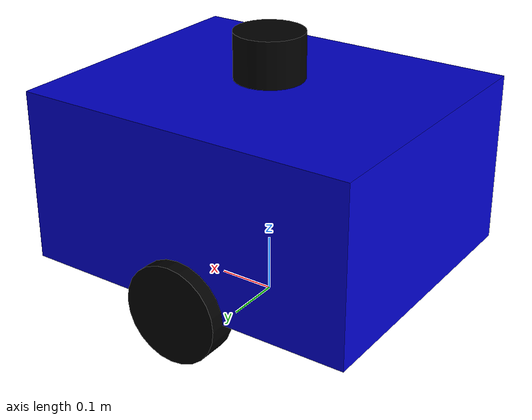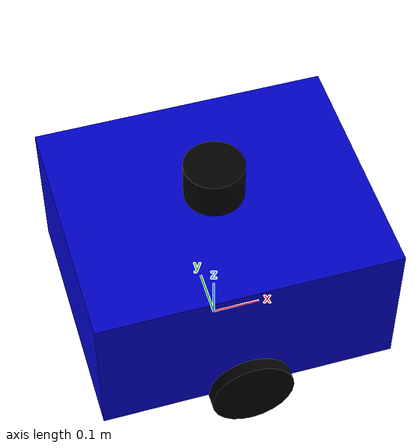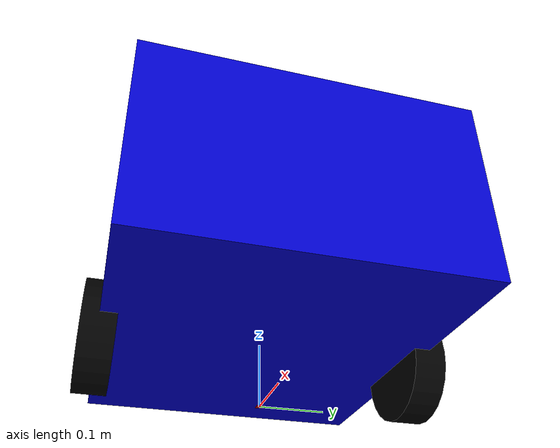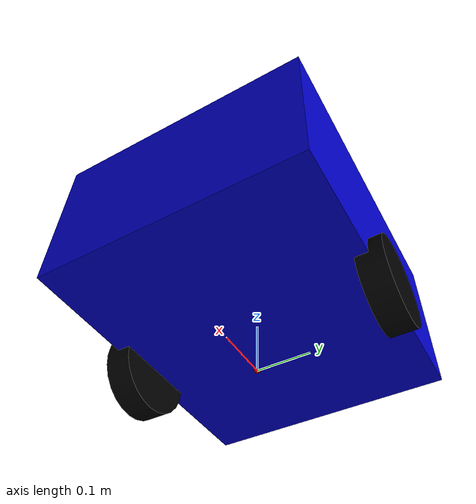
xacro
<?xml version="1.0"?>
<robot xmlns:xacro="http://www.ros.org/wiki/xacro" name="ultrabot">

  <!-- PARAMETERS (from robot_config.yaml) -->
  <xacro:property name="wheel_separation" value="0.5" />   <!-- distance_wheels -->
  <xacro:property name="wheel_diameter" value="0.17" />     <!-- wheel_diameter -->
  <xacro:property name="wheel_radius" value="${wheel_diameter / 2.0}" />
  <xacro:property name="wheel_width" value="0.05" />

  <xacro:property name="base_length" value="0.6" />
  <xacro:property name="base_width" value="0.5" />
  <xacro:property name="base_height" value="0.3" />

  <!-- Sensor mounting positions -->
  <xacro:property name="lidar_front_x" value="0.25" />      <!-- Front 2D LiDAR -->
  <xacro:property name="lidar_front_z" value="0.20" />
  <xacro:property name="lidar_rear_x" value="-0.25" />      <!-- Rear 2D LiDAR -->
  <xacro:property name="lidar_rear_z" value="0.20" />
  <xacro:property name="lidar_3d_x" value="0.0" />          <!-- 3D LiDAR (Ouster) top center -->
  <xacro:property name="lidar_3d_z" value="0.35" />
  <xacro:property name="realsense_front_left_x" value="0.22" />   <!-- Front-left RealSense D455 -->
  <xacro:property name="realsense_front_left_y" value="0.15" />
  <xacro:property name="realsense_front_left_z" value="0.15" />
  <xacro:property name="realsense_front_right_x" value="0.22" />  <!-- Front-right RealSense D455 -->
  <xacro:property name="realsense_front_right_y" value="-0.15" />
  <xacro:property name="realsense_front_right_z" value="0.15" />

  <!-- MATERIALS (Visual Colors for RViz) -->
  <material name="blue">
    <color rgba="0.0 0.0 0.8 1.0"/>
  </material>
  <material name="black">
    <color rgba="0.0 0.0 0.0 1.0"/>
  </material>
  <material name="red">
    <color rgba="0.8 0.0 0.0 1.0"/>
  </material>

  <!-- BASE_FOOTPRINT (Ground Projection - Nav2 Planning Reference) -->
  <!-- This is the 2D projection of the robot on the ground plane.
       Nav2 uses this as the reference frame for costmaps and planning. -->
  <link name="base_footprint">
    <visual>
      <origin xyz="0 0 0" rpy="0 0 0"/>
      <geometry>
        <box size="0.01 0.01 0.001"/>
      </geometry>
      <material name="red"/>
    </visual>
  </link>

  <!-- BASE_LINK (Robot Center - Origin of Robot Coordinate System) -->
  <link name="base_link">
    <visual>
      <origin xyz="0 0 ${base_height/2}" rpy="0 0 0"/>
      <geometry>
        <box size="${base_length} ${base_width} ${base_height}"/>
      </geometry>
      <material name="blue"/>
    </visual>

    <collision>
      <origin xyz="0 0 ${base_height/2}" rpy="0 0 0"/>
      <geometry>
        <box size="${base_length} ${base_width} ${base_height}"/>
      </geometry>
    </collision>

    <inertial>
      <origin xyz="0 0 ${base_height/2}" rpy="0 0 0"/>
      <mass value="50.0"/>  <!-- 50 kg AGV -->
      <inertia ixx="1.0" ixy="0.0" ixz="0.0"
               iyy="1.0" iyz="0.0"
               izz="1.0"/>
    </inertial>
  </link>

  <!-- Joint: base_footprint → base_link (fixed, Z-offset = wheel_radius) -->
  <joint name="base_footprint_to_base_link" type="fixed">
    <parent link="base_footprint"/>
    <child link="base_link"/>
    <origin xyz="0 0 ${wheel_radius}" rpy="0 0 0"/>
  </joint>

  <!-- LEFT WHEEL LINK -->
  <link name="left_wheel_link">
    <visual>
      <origin xyz="0 0 0" rpy="${pi/2} 0 0"/>
      <geometry>
        <cylinder radius="${wheel_radius}" length="${wheel_width}"/>
      </geometry>
      <material name="black"/>
    </visual>

    <collision>
      <origin xyz="0 0 0" rpy="${pi/2} 0 0"/>
      <geometry>
        <cylinder radius="${wheel_radius}" length="${wheel_width}"/>
      </geometry>
    </collision>

    <inertial>
      <origin xyz="0 0 0" rpy="${pi/2} 0 0"/>
      <mass value="2.0"/>
      <inertia ixx="0.01" ixy="0.0" ixz="0.0"
               iyy="0.01" iyz="0.0"
               izz="0.01"/>
    </inertial>
  </link>

  <!-- Joint: base_link → left_wheel_link (continuous rotation) -->
  <joint name="left_wheel_joint" type="continuous">
    <parent link="base_link"/>
    <child link="left_wheel_link"/>
    <origin xyz="0 ${wheel_separation/2} 0" rpy="0 0 0"/>
    <axis xyz="0 1 0"/>  <!-- Rotation axis (Y-axis for side wheels) -->
  </joint>

  <!-- RIGHT WHEEL LINK -->
  <link name="right_wheel_link">
    <visual>
      <origin xyz="0 0 0" rpy="${pi/2} 0 0"/>
      <geometry>
        <cylinder radius="${wheel_radius}" length="${wheel_width}"/>
      </geometry>
      <material name="black"/>
    </visual>

    <collision>
      <origin xyz="0 0 0" rpy="${pi/2} 0 0"/>
      <geometry>
        <cylinder radius="${wheel_radius}" length="${wheel_width}"/>
      </geometry>
    </collision>

    <inertial>
      <origin xyz="0 0 0" rpy="${pi/2} 0 0"/>
      <mass value="2.0"/>
      <inertia ixx="0.01" ixy="0.0" ixz="0.0"
               iyy="0.01" iyz="0.0"
               izz="0.01"/>
    </inertial>
  </link>

  <!-- Joint: base_link → right_wheel_link (continuous rotation) -->
  <joint name="right_wheel_joint" type="continuous">
    <parent link="base_link"/>
    <child link="right_wheel_link"/>
    <origin xyz="0 ${-wheel_separation/2} 0" rpy="0 0 0"/>
    <axis xyz="0 1 0"/>
  </joint>

  <!-- FRONT 2D LIDAR (e.g., SICK TiM571, Hokuyo UST-10LX) -->
  <link name="scan_front_link">
    <visual>
      <origin xyz="0 0 0" rpy="0 0 0"/>
      <geometry>
        <cylinder radius="0.05" length="0.05"/>
      </geometry>
      <material name="red"/>
    </visual>

    <collision>
      <origin xyz="0 0 0" rpy="0 0 0"/>
      <geometry>
        <cylinder radius="0.05" length="0.05"/>
      </geometry>
    </collision>

    <inertial>
      <origin xyz="0 0 0" rpy="0 0 0"/>
      <mass value="0.5"/>
      <inertia ixx="0.001" ixy="0.0" ixz="0.0"
               iyy="0.001" iyz="0.0"
               izz="0.001"/>
    </inertial>
  </link>

  <joint name="scan_front_joint" type="fixed">
    <parent link="base_link"/>
    <child link="scan_front_link"/>
    <origin xyz="${lidar_front_x} 0 ${lidar_front_z}" rpy="0 0 0"/>
  </joint>

  <!-- REAR 2D LIDAR (Rear Coverage for Obstacle Detection) -->
  <link name="scan_rear_link">
    <visual>
      <origin xyz="0 0 0" rpy="0 0 0"/>
      <geometry>
        <cylinder radius="0.05" length="0.05"/>
      </geometry>
      <material name="red"/>
    </visual>

    <collision>
      <origin xyz="0 0 0" rpy="0 0 0"/>
      <geometry>
        <cylinder radius="0.05" length="0.05"/>
      </geometry>
    </collision>

    <inertial>
      <origin xyz="0 0 0" rpy="0 0 0"/>
      <mass value="0.5"/>
      <inertia ixx="0.001" ixy="0.0" ixz="0.0"
               iyy="0.001" iyz="0.0"
               izz="0.001"/>
    </inertial>
  </link>

  <joint name="scan_rear_joint" type="fixed">
    <parent link="base_link"/>
    <child link="scan_rear_link"/>
    <origin xyz="${lidar_rear_x} 0 ${lidar_rear_z}" rpy="0 0 ${pi}"/>  <!-- 180° rotation -->
  </joint>

  <!-- 3D LIDAR (Ouster OS1-64/OS1-128 - PointCloud2) -->
  <link name="ouster_link">
    <visual>
      <origin xyz="0 0 0" rpy="0 0 0"/>
      <geometry>
        <cylinder radius="0.06" length="0.08"/>
      </geometry>
      <material name="black"/>
    </visual>

    <collision>
      <origin xyz="0 0 0" rpy="0 0 0"/>
      <geometry>
        <cylinder radius="0.06" length="0.08"/>
      </geometry>
    </collision>

    <inertial>
      <origin xyz="0 0 0" rpy="0 0 0"/>
      <mass value="0.8"/>
      <inertia ixx="0.002" ixy="0.0" ixz="0.0"
               iyy="0.002" iyz="0.0"
               izz="0.002"/>
    </inertial>
  </link>

  <joint name="ouster_joint" type="fixed">
    <parent link="base_link"/>
    <child link="ouster_link"/>
    <origin xyz="${lidar_3d_x} 0 ${lidar_3d_z}" rpy="0 0 0"/>
  </joint>

  <!-- REALSENSE D455 - FRONT LEFT -->
  <link name="camera_front_left_link">
    <visual>
      <origin xyz="0 0 0" rpy="0 0 0"/>
      <geometry>
        <box size="0.026 0.090 0.025"/>  <!-- D455 dimensions -->
      </geometry>
      <material name="black"/>
    </visual>

    <collision>
      <origin xyz="0 0 0" rpy="0 0 0"/>
      <geometry>
        <box size="0.026 0.090 0.025"/>
      </geometry>
    </collision>

    <inertial>
      <origin xyz="0 0 0" rpy="0 0 0"/>
      <mass value="0.12"/>
      <inertia ixx="0.0001" ixy="0.0" ixz="0.0"
               iyy="0.0001" iyz="0.0"
               izz="0.0001"/>
    </inertial>
  </link>

  <joint name="camera_front_left_joint" type="fixed">
    <parent link="base_link"/>
    <child link="camera_front_left_link"/>
    <origin xyz="${realsense_front_left_x} ${realsense_front_left_y} ${realsense_front_left_z}" rpy="0 0 0"/>
  </joint>

  <!-- Optical frame (RealSense convention: Z forward, Y down) -->
  <link name="camera_front_left_depth_optical_frame"/>

  <joint name="camera_front_left_depth_optical_joint" type="fixed">
    <parent link="camera_front_left_link"/>
    <child link="camera_front_left_depth_optical_frame"/>
    <origin xyz="0 0 0" rpy="${-pi/2} 0 ${-pi/2}"/>  <!-- Rotate to optical frame -->
  </joint>

  <!-- REALSENSE D455 - FRONT RIGHT -->
  <link name="camera_front_right_link">
    <visual>
      <origin xyz="0 0 0" rpy="0 0 0"/>
      <geometry>
        <box size="0.026 0.090 0.025"/>
      </geometry>
      <material name="black"/>
    </visual>

    <collision>
      <origin xyz="0 0 0" rpy="0 0 0"/>
      <geometry>
        <box size="0.026 0.090 0.025"/>
      </geometry>
    </collision>

    <inertial>
      <origin xyz="0 0 0" rpy="0 0 0"/>
      <mass value="0.12"/>
      <inertia ixx="0.0001" ixy="0.0" ixz="0.0"
               iyy="0.0001" iyz="0.0"
               izz="0.0001"/>
    </inertial>
  </link>

  <joint name="camera_front_right_joint" type="fixed">
    <parent link="base_link"/>
    <child link="camera_front_right_link"/>
    <origin xyz="${realsense_front_right_x} ${realsense_front_right_y} ${realsense_front_right_z}" rpy="0 0 0"/>
  </joint>

  <!-- Optical frame -->
  <link name="camera_front_right_depth_optical_frame"/>

  <joint name="camera_front_right_depth_optical_joint" type="fixed">
    <parent link="camera_front_right_link"/>
    <child link="camera_front_right_depth_optical_frame"/>
    <origin xyz="0 0 0" rpy="${-pi/2} 0 ${-pi/2}"/>
  </joint>

  <!-- Legacy compatibility: keep laser_frame pointing to front 2D LiDAR -->
  <link name="laser_frame"/>
  <joint name="laser_frame_joint" type="fixed">
    <parent link="scan_front_link"/>
    <child link="laser_frame"/>
    <origin xyz="0 0 0" rpy="0 0 0"/>
  </joint>

  <!-- IMU LINK (Inertial Measurement Unit - Robot Center) -->
  <link name="imu_link">
    <visual>
      <origin xyz="0 0 0" rpy="0 0 0"/>
      <geometry>
        <box size="0.03 0.03 0.01"/>
      </geometry>
      <material name="red"/>
    </visual>

    <inertial>
      <origin xyz="0 0 0" rpy="0 0 0"/>
      <mass value="0.05"/>
      <inertia ixx="0.0001" ixy="0.0" ixz="0.0"
               iyy="0.0001" iyz="0.0"
               izz="0.0001"/>
    </inertial>
  </link>

  <!-- Joint: base_link → imu_link (fixed, center position) -->
  <joint name="imu_joint" type="fixed">
    <parent link="base_link"/>
    <child link="imu_link"/>
    <origin xyz="0 0 ${base_height/2}" rpy="0 0 0"/>
  </joint>

</robot>
